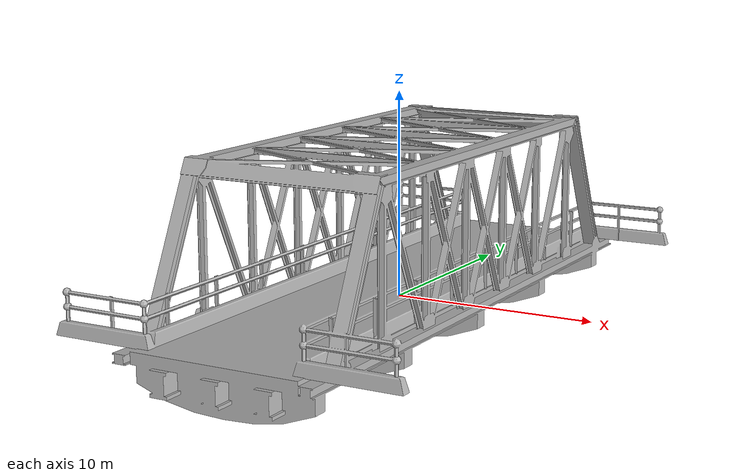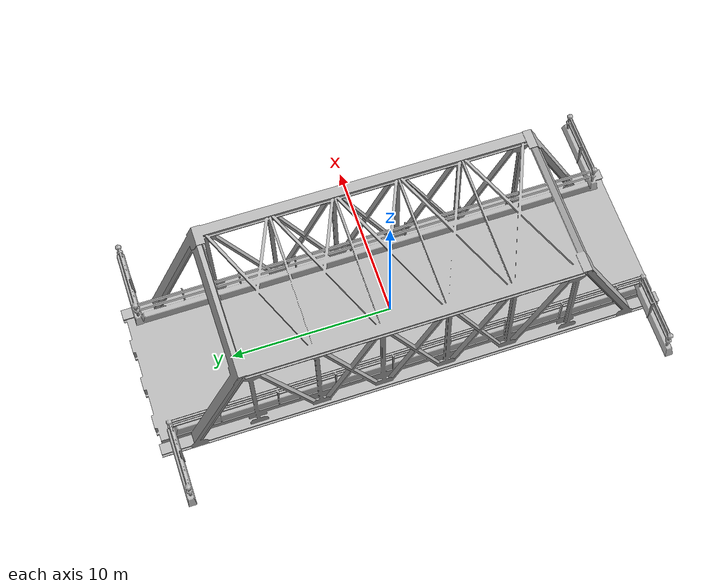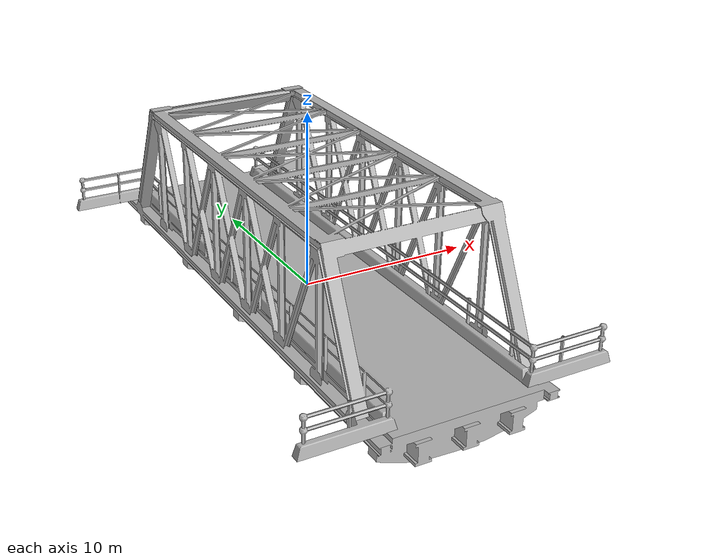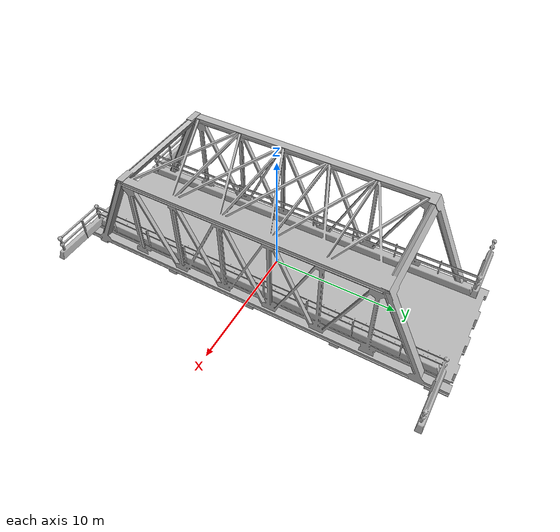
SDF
<?xml version="1.0" ?>
<sdf version="1.6">
  <model name="truss_bridge">
    <static>true</static>
    <link name="link">
      <collision name="collision">
        <geometry>
          <mesh>
            <scale>2 2 2</scale>
            <uri>model://truss_bridge/meshes/truss_bridge.dae</uri>
          </mesh>
        </geometry>
      </collision>
      <visual name="visual">
        <geometry>
          <mesh>
            <scale>2 2 2</scale>
            <uri>model://truss_bridge/meshes/truss_bridge.dae</uri>
          </mesh>
        </geometry>
      </visual>
    </link>
  </model>
</sdf>
